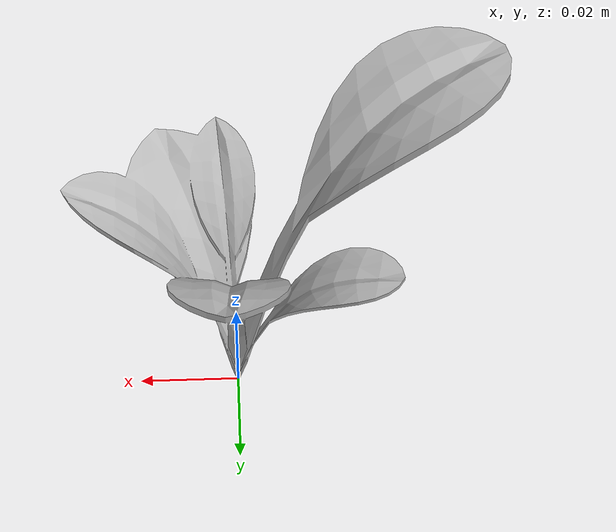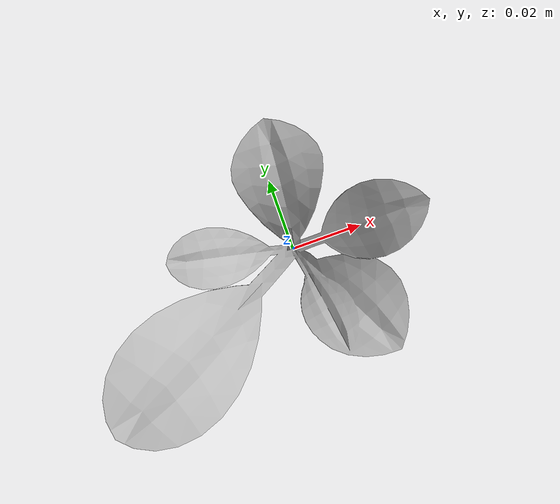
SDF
<sdf version="1.6">
  <model name="sugar_beet_27">
    <static>true</static>
    <link name="body">
      <visual name="visual">
        <geometry>
          <mesh>
            <uri>file:///sugar_beet_27/media/sugar_beet.dae</uri>
          </mesh>
        </geometry>
      </visual>
    </link>
  </model>
</sdf>
